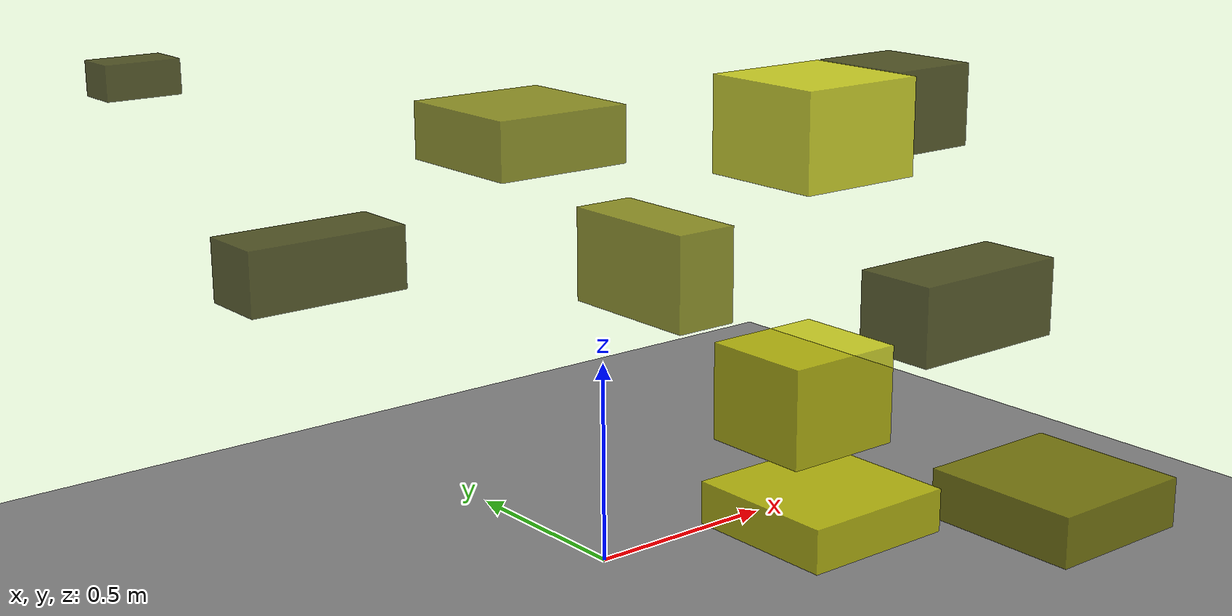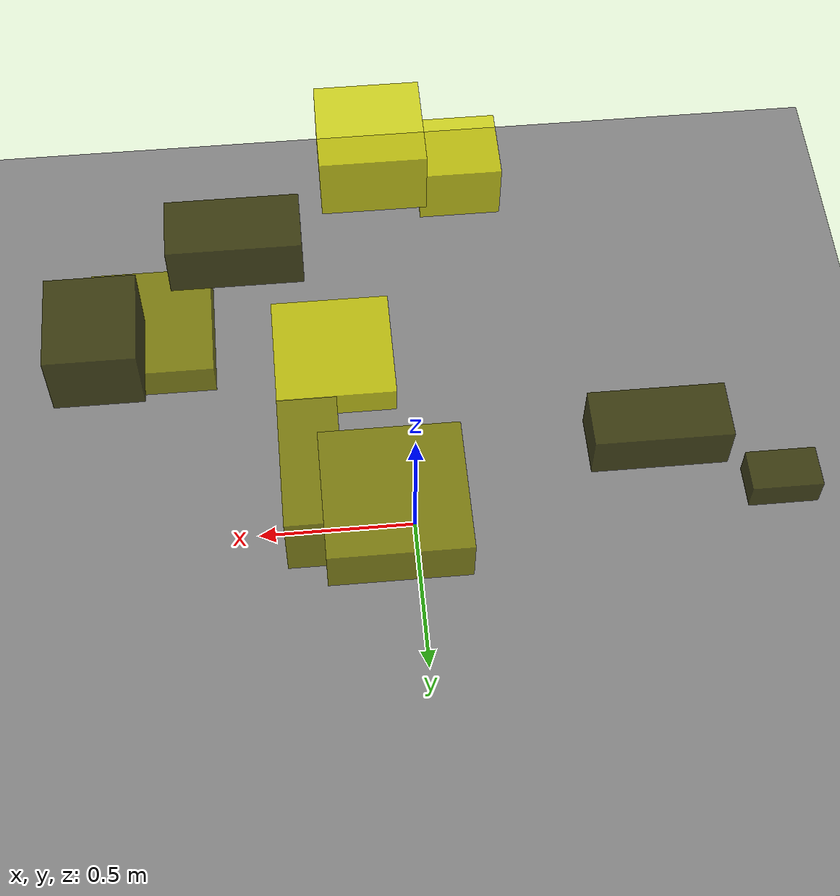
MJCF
<?xml version="1.0"?>
<mujoco model="obstacle_scene">
  <compiler angle="radian" coordinate="local"/>
  <option timestep="0.001" gravity="0 0 -9.81"/>

  <asset>
    <material name="obstacle_mat" rgba="0.8 0.8 0.0 0.8"/>
    <material name="ground_mat" rgba="0.5 0.5 0.5 1"/>
  </asset>

  <worldbody>
    <!-- Ground plane -->
    <geom name="ground" type="plane" size="3 3 0.1" material="ground_mat"/>

    <!-- Obstacles -->
    <body name="obstacle_0" pos="-0.854092 0.591029 1.192929">
      <geom name="obs_0" type="box" size="0.087441 0.053394 0.039857" rgba="0.2 0.2 0.0 0.8"/>
    </body>
    <body name="obstacle_1" pos="0.314099 0.193334 0.650898">
      <geom name="obs_1" type="box" size="0.085624 0.203519 0.123602" rgba="0.5 0.5 0.0 0.8"/>
    </body>
    <body name="obstacle_2" pos="-0.209235 -0.888779 0.701346">
      <geom name="obs_2" type="box" size="0.125164 0.115746 0.097862" rgba="0.8 0.8 0.0 0.8"/>
    </body>
    <body name="obstacle_3" pos="0.501293 -0.647130 0.700066">
      <geom name="obs_3" type="box" size="0.205225 0.099918 0.090413" rgba="0.2 0.2 0.0 0.8"/>
    </body>
    <body name="obstacle_4" pos="0.809939 -0.702981 0.173853">
      <geom name="obs_4" type="box" size="0.199064 0.203828 0.061992" rgba="0.5 0.5 0.0 0.8"/>
    </body>
    <body name="obstacle_5" pos="0.080914 -0.603883 1.145903">
      <geom name="obs_5" type="box" size="0.148809 0.143750 0.104105" rgba="0.8 0.8 0.0 0.8"/>
    </body>
    <body name="obstacle_6" pos="-0.656023 0.194744 0.813497">
      <geom name="obs_6" type="box" size="0.191974 0.084487 0.073182" rgba="0.2 0.2 0.0 0.8"/>
    </body>
    <body name="obstacle_7" pos="0.100535 0.460566 0.973854">
      <geom name="obs_7" type="box" size="0.189355 0.187780 0.074184" rgba="0.5 0.5 0.0 0.8"/>
    </body>
    <body name="obstacle_8" pos="0.221003 -0.511647 0.241962">
      <geom name="obs_8" type="box" size="0.191933 0.188586 0.051225" rgba="0.8 0.8 0.0 0.8"/>
    </body>
    <body name="obstacle_9" pos="0.875275 -0.077089 1.035233">
      <geom name="obs_9" type="box" size="0.124220 0.138015 0.104823" rgba="0.2 0.2 0.0 0.8"/>
    </body>
  </worldbody>
</mujoco>
